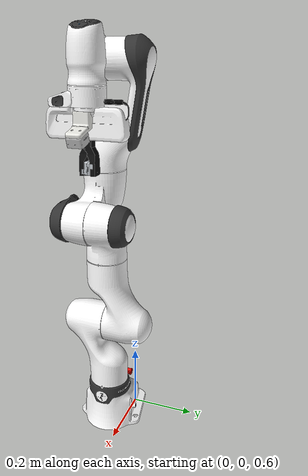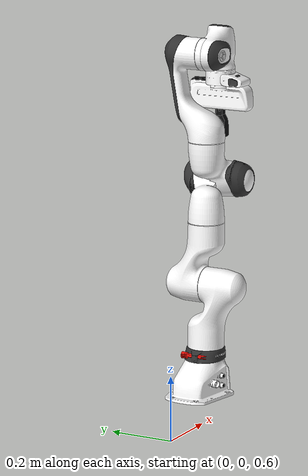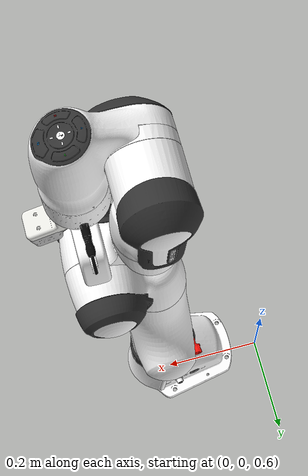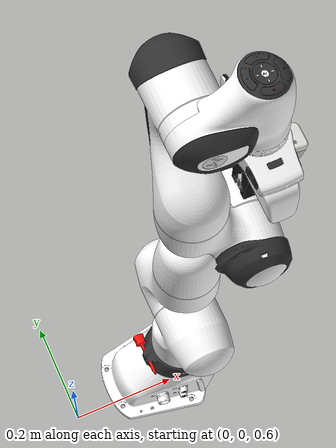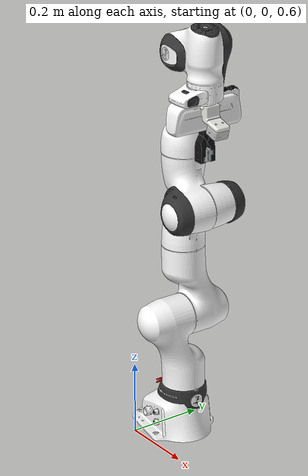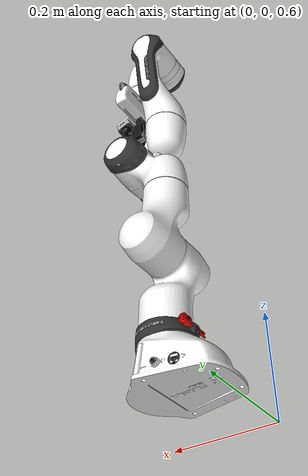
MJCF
<mujoco model="fr3">

  <compiler angle="radian" meshdir="assets"/>

  <option integrator="implicitfast"/>

  <default>
    <default class="fr3">

      <!-- Full gravity compensation for the FR3 body tree only. -->

      <joint
        damping="0.21"
        armature="0.195"
        frictionloss="1.137"/>

      <position inheritrange="1"/>

      <default class="visual">
        <geom
          type="mesh"
          group="2"
          contype="0"
          conaffinity="0"/>
      </default>

      <default class="collision">
        <geom
          type="mesh"
          group="3"
          mass="0"
          density="0"/>
      </default>

      <site
        size="0.001"
        rgba="0.5 0.5 0.5 0.3"
        group="4"/>

    </default>
  </default>

  <asset>

    <material name="black" rgba=".2 .2 .2 1"/>
    <material name="white" rgba="1 1 1 1"/>
    <material name="red" rgba="1 0.072272 0.039546 1"/>
    <material name="gray" rgba="0.863156 0.863156 0.863157 1"/>

    <material
      name="button_green"
      rgba="0.102241 0.571125 0.102242 1"/>

    <material
      name="button_red"
      rgba="0.520996 0.008023 0.013702 1"/>

    <material
      name="button_blue"
      rgba="0.024157 0.445201 0.737911 1"/>

    <mesh file="link0_0.obj"/>
    <mesh file="link0_1.obj"/>
    <mesh file="link0_2.obj"/>
    <mesh file="link0_3.obj"/>
    <mesh file="link0_4.obj"/>
    <mesh file="link0_5.obj"/>
    <mesh file="link0_6.obj"/>

    <mesh file="link1.obj"/>
    <mesh file="link2.obj"/>

    <mesh file="link3_0.obj"/>
    <mesh file="link3_1.obj"/>

    <mesh file="link4_0.obj"/>
    <mesh file="link4_1.obj"/>

    <mesh file="link5_0.obj"/>
    <mesh file="link5_1.obj"/>
    <mesh file="link5_2.obj"/>

    <mesh file="link6_0.obj"/>
    <mesh file="link6_1.obj"/>
    <mesh file="link6_2.obj"/>
    <mesh file="link6_3.obj"/>
    <mesh file="link6_4.obj"/>
    <mesh file="link6_5.obj"/>
    <mesh file="link6_6.obj"/>
    <mesh file="link6_7.obj"/>

    <mesh file="link7_0.obj"/>
    <mesh file="link7_1.obj"/>
    <mesh file="link7_2.obj"/>
    <mesh file="link7_3.obj"/>

    <mesh name="link0_coll" file="link0.stl"/>
    <mesh name="link1_coll" file="link1.stl"/>
    <mesh name="link2_coll" file="link2.stl"/>
    <mesh name="link3_coll" file="link3.stl"/>
    <mesh name="link4_coll" file="link4.stl"/>
    <mesh name="link5_coll" file="link5.stl"/>
    <mesh name="link6_coll" file="link6.stl"/>
    <mesh name="link7_coll" file="link7.stl"/>

    <mesh name="franka_hand_coll" file="hand.stl"/>

    <!-- Official high-detail Franka Hand visual mesh -->
        <!-- Official Franka hand split into body and cable -->
        <!-- Detailed Franka hand components -->
    <mesh
      name="franka_hand_body_mesh"
      file="franka_hand_body_aligned.stl"/>

    <mesh
      name="franka_hand_cable_mesh"
      file="franka_hand_cable_aligned.stl"/>

    <mesh
      name="franka_hand_connector_mesh"
      file="franka_hand_connector_aligned.stl"/>

        <!-- Official GelSight Mini CAD -->
    <mesh
      name="gelsight_mini_shell_mesh"
      file="gsmini_shell.stl"
      scale="0.001 0.001 0.001"/>

    <mesh
      name="gelsight_panda_adapter_mesh"
      file="panda_adapter_gsmini.stl"
      scale="0.001 0.001 0.001"/>

    <mesh
      name="d405_franka_mount_mesh"
      file="d405_mount/d405_mount_aligned.stl"
      scale="0.001 0.001 0.001"/>

    <!-- Intel RealSense D405 CAD -->
    <mesh
      name="d405_camera_mesh"
      file="d405_mount/RealSense_D405_binary.stl"/>

  </asset>

  <worldbody>

    <body gravcomp="1" name="base" childclass="fr3" pos="0.22 0 0.70">

      <body gravcomp="1" name="fr3_link0">

        <geom mesh="link0_0" material="black" class="visual"/>
        <geom mesh="link0_1" material="white" class="visual"/>
        <geom mesh="link0_2" material="white" class="visual"/>
        <geom mesh="link0_3" material="white" class="visual"/>
        <geom mesh="link0_4" material="white" class="visual"/>
        <geom mesh="link0_5" material="red" class="visual"/>
        <geom mesh="link0_6" material="black" class="visual"/>

        <geom
          name="fr3_link0_collision"
          mesh="link0_coll"
          class="collision"/>

        <body gravcomp="1" name="fr3_link1" pos="0 0 0.333">

          <inertial
            pos="4.128e-07 -0.0181251 -0.0386036"
            quat="0.998098 -0.0605364 0.00380499 0.0110109"
            mass="2.92747"
            diaginertia="0.0239286 0.0227246 0.00610634"/>

          <joint
            name="fr3_joint1"
            axis="0 0 1"
            range="-2.7437 2.7437"
            actuatorfrcrange="-87 87"/>

          <geom
            name="fr3_link1_collision"
            class="collision"
            mesh="link1_coll"/>

          <geom
            material="white"
            mesh="link1"
            class="visual"/>

          <body gravcomp="1" name="fr3_link2" quat="1 -1 0 0">

            <inertial
              pos="0.00318289 -0.0743222 0.00881461"
              quat="0.502599 0.584437 -0.465998 0.434366"
              mass="2.93554"
              diaginertia="0.0629567 0.0411924 0.0246371"/>

            <joint
              name="fr3_joint2"
              axis="0 0 1"
              range="-1.7837 1.7837"
              actuatorfrcrange="-87 87"/>

            <geom
              material="white"
              mesh="link2"
              class="visual"/>

            <geom
              name="fr3_link2_collision"
              class="collision"
              mesh="link2_coll"/>

            <body gravcomp="1"
              name="fr3_link3"
              pos="0 -0.316 0"
              quat="1 1 0 0">

              <inertial
                pos="0.0407016 -0.00482006 -0.0289731"
                quat="0.921025 -0.244161 0.155272 0.260745"
                mass="2.2449"
                diaginertia="0.0267409 0.0189869 0.0171587"/>

              <joint
                name="fr3_joint3"
                axis="0 0 1"
                range="-2.9007 2.9007"
                actuatorfrcrange="-87 87"/>

              <geom
                mesh="link3_0"
                material="white"
                class="visual"/>

              <geom
                mesh="link3_1"
                material="black"
                class="visual"/>

              <geom
                name="fr3_link3_collision"
                class="collision"
                mesh="link3_coll"/>

              <body gravcomp="1"
                name="fr3_link4"
                pos="0.0825 0 0"
                quat="1 1 0 0">

                <inertial
                  pos="-0.0459101 0.0630493 -0.00851879"
                  quat="0.438018 0.803311 0.00937812 0.403414"
                  mass="2.6156"
                  diaginertia="0.05139 0.0372717 0.0160047"/>

                <joint
                  name="fr3_joint4"
                  axis="0 0 1"
                  range="-3.0421 -0.1518"
                  actuatorfrcrange="-87 87"/>

                <geom
                  mesh="link4_0"
                  material="white"
                  class="visual"/>

                <geom
                  mesh="link4_1"
                  material="black"
                  class="visual"/>

                <geom
                  name="fr3_link4_collision"
                  class="collision"
                  mesh="link4_coll"/>

                <body gravcomp="1"
                  name="fr3_link5"
                  pos="-0.0825 0.384 0"
                  quat="1 -1 0 0">

                  <inertial
                    pos="-0.00160396 0.0292536 -0.0972966"
                    quat="0.919031 0.125604 0.0751531 -0.366003"
                    mass="2.32712"
                    diaginertia="0.0579335 0.0449144 0.0130634"/>

                  <joint
                    name="fr3_joint5"
                    axis="0 0 1"
                    range="-2.8065 2.8065"
                    actuatorfrcrange="-12 12"
                    armature="0.074"
                    frictionloss="0.763"/>

                  <geom
                    mesh="link5_0"
                    material="white"
                    class="visual"/>

                  <geom
                    mesh="link5_1"
                    material="white"
                    class="visual"/>

                  <geom
                    mesh="link5_2"
                    material="black"
                    class="visual"/>

                  <geom
                    name="fr3_link5_collision"
                    class="collision"
                    mesh="link5_coll"/>

                  <body gravcomp="1" name="fr3_link6" quat="1 1 0 0">

                    <inertial
                      pos="0.0597131 -0.0410295 -0.0101693"
                      quat="0.621301 0.552665 0.510011 0.220081"
                      mass="1.81704"
                      diaginertia="0.0175039 0.0161123 0.00193529"/>

                    <joint
                      name="fr3_joint6"
                      axis="0 0 1"
                      range="0.5445 4.5169"
                      actuatorfrcrange="-12 12"
                      armature="0.074"
                      frictionloss="0.44"/>

                    <geom
                      mesh="link6_0"
                      material="button_green"
                      class="visual"/>

                    <geom
                      mesh="link6_1"
                      material="white"
                      class="visual"/>

                    <geom
                      mesh="link6_2"
                      material="white"
                      class="visual"/>

                    <geom
                      mesh="link6_3"
                      material="gray"
                      class="visual"/>

                    <geom
                      mesh="link6_4"
                      material="button_red"
                      class="visual"/>

                    <geom
                      mesh="link6_5"
                      material="white"
                      class="visual"/>

                    <geom
                      mesh="link6_6"
                      material="black"
                      class="visual"/>

                    <geom
                      mesh="link6_7"
                      material="button_blue"
                      class="visual"/>

                    <geom
                      name="fr3_link6_collision"
                      class="collision"
                      mesh="link6_coll"/>

                    <body gravcomp="1"
                      name="fr3_link7"
                      pos="0.088 0 0"
                      quat="1 1 0 0">

                      <inertial
                        pos="0.00452258 0.00862619 -0.0161633"
                        quat="0.727579 0.0978688 -0.24906 0.63168"
                        mass="0.627143"
                        diaginertia="0.000223836 0.000223642 5.64132e-07"/>

                      <joint
                        name="fr3_joint7"
                        axis="0 0 1"
                        range="-3.0159 3.0159"
                        actuatorfrcrange="-12 12"
                        armature="0.074"
                        frictionloss="0.248"/>

                      <!-- Link 7 visual-only clocking correction: 30 deg -->
                      <geom
                        mesh="link7_0"
                        material="black"
                        class="visual"
                        pos="0 0 0.0015"
                        euler="0 0 0.783"/>

                      <geom
                        mesh="link7_1"
                        material="white"
                        class="visual"
                        pos="0 0 0.0015"
                        euler="0 0 0.783"/>

                      <geom
                        mesh="link7_2"
                        material="white"
                        class="visual"
                        pos="0 0 0.0015"
                        euler="0 0 0.783"/>

                      <geom
                        mesh="link7_3"
                        material="black"
                        class="visual"
                        pos="0 0 0.0015"
                        euler="0 0 0.783"/>

                      <geom
                        name="fr3_link7_collision"
                        class="collision"
                        mesh="link7_coll"/>

                      <site
                        name="attachment_site"
                        pos="0 0 0.107"
                        type="sphere"
                        size="0.010"
                        rgba="0 1 0 1"/>

                      <body gravcomp="1" name="fr3_hand" pos="0 0 0.107" euler="0 0 -0.7853981633974483">

                        <body
                          gravcomp="1"
                          name="fr3_hand_physical"
                          euler="0 0 0.7853981633974483">

                        <!-- Official detailed Franka hand visual -->

                        <!-- Official detailed Franka hand visual -->
                        <!-- Official detailed Franka hand visual -->
                        <!-- Detailed Franka hand body -->
                        <!-- Detailed Franka hand body -->
                        <geom
                          name="fr3_hand_visual"
                          type="mesh"
                          mesh="franka_hand_body_mesh"
                          rgba="1 1 1 1"
                          contype="0"
                          conaffinity="0"
                          group="2"/>

                        <geom
                          name="fr3_hand_cable_visual"
                          type="mesh"
                          mesh="franka_hand_cable_mesh"
                          rgba="0.02 0.02 0.02 1"
                          contype="0"
                          conaffinity="0"
                          group="2"/>

                        <geom
                          name="fr3_hand_connector_visual"
                          type="mesh"
                          mesh="franka_hand_connector_mesh"
                          rgba="0.02 0.02 0.02 1"
                          contype="0"
                          conaffinity="0"
                          group="2"/>

                        <!-- Existing simplified collision geometry -->
                        <geom
                          name="fr3_hand_collision"
                          type="mesh"
                          mesh="franka_hand_coll"
                          rgba="0.25 0.25 0.25 0"
                          group="3"/>

                        <site
                          name="hand_tcp"
                          pos="0 0 0.1034"
                          type="sphere"
                          size="0.010"
                          rgba="0 0 1 1"/>

                        <!--
                          Center of the grasp between the fingertip pads.
                          This is the site used by the harvesting IK.
                        -->

                        <site
                          name="grasp_center"
                          pos="0 0 0.1834"
                          type="sphere"
                          size="0.008"
                          rgba="0 1 1 1"/>

                        <site
                          name="tomato_attachment_center"
                          pos="0 0 0.23304"
                          type="sphere"
                          size="0.006"
                          rgba="1 0 1 0"/>

                        <body gravcomp="1"
                          name="fr3_leftfinger"
                          pos="0 0 0.0584">

                          <joint
                            name="fr3_finger_joint1"
                            type="slide"
                            axis="0 1 0"
                            range="0 0.06"
                            damping="0.3"
                            limited="true"/>

                          <!-- Panda adapter replaces the original Franka finger -->
                          <!-- LEFT Panda adapter assembly -->
                          <body
                            name="gelsight_left_adapter_mount"
                            pos="0 0 0.01525"
                            quat="0.7071068 -0.7071068 0 0">

                            <geom
                              name="gelsight_left_adapter_visual"
                              type="mesh"
                              mesh="gelsight_panda_adapter_mesh"
                              rgba="0.05 0.05 0.05 1"
                              contype="0"
                              conaffinity="0"
                              group="2"/>

                            <body
                              name="gelsight_left_sensor_mount"
                              pos="0 -0.060 0.012"
                              quat="0.5 -0.5 -0.5 0.5">

                              <geom
                                name="gelsight_left_shell_visual"
                                type="mesh"
                                mesh="gelsight_mini_shell_mesh"
                                rgba="0.72 0.74 0.76 1"
                                contype="0"
                                conaffinity="0"
                                group="2"/>

                              <geom
                                name="gelsight_left_shell_collision"
                                type="box"
                                pos="0 0 0.000"
                                size="0.018 0.013 0.018"
                                rgba="0 0 0 0"
                                friction="2.0 0.03 0.003"
                                solref="0.002 1"
                                solimp="0.995 0.999 0.0002"
                                condim="4"
                                contype="1"
                                conaffinity="1"/>

                              <!-- GelSight sensing area -->
                              <geom
                                name="gelsight_left_pad"
                                type="box"
                                pos="0 0 0.0146"
                                size="0.0093 0.00715 0.0010"
                                rgba="0.10 0.25 0.65 0.8"
                                friction="2.0 0.02 0.002"
                                contype="0"
                                conaffinity="0"
                                group="3"/>

                              <!-- Robust invisible GelSight collision surface -->
                              <geom
                                name="gelsight_left_collision"
                                type="box"
                                pos="-0.00011 0.00025 0.00003"
                                size="0.0190 0.0180 0.0160"
                                rgba="0 0 0 0"
                                friction="3.0 0.05 0.005"
                                solref="0.003 1"
                                solimp="0.98 0.995 0.0005"
                                margin="0.001"
                                condim="4"
                                contype="1"
                                conaffinity="1"
                                group="3"/>

                              <site
                                name="gelsight_left_pad_site"
                                pos="0 0 0.0157"
                                type="box"
                                size="0.0093 0.00715 0.0005"
                                rgba="0 1 1 0.6"/>

                              <!-- Simulated GelSight Mini internal camera -->
                              <camera
                                name="gelsight_left_camera"
                                pos="0 0 0"
                                quat="1 0 0 0"
                                fovy="70"
                                resolution="320 240"/>

                            </body>
                          </body>

                        </body>

                        <body gravcomp="1"
                          name="fr3_rightfinger"
                          pos="0 0 0.0584">

                          <joint
                            name="fr3_finger_joint2"
                            type="slide"
                            axis="0 -1 0"
                            range="0 0.06"
                            damping="0.3"
                            limited="true"/>

                          <!-- Panda adapter replaces the original Franka finger -->
                          <!-- RIGHT Panda adapter assembly -->
                          <body
                            name="gelsight_right_adapter_mount"
                            pos="0 0 0.01525"
                            quat="0 0 0.7071068 -0.7071068">

                            <geom
                              name="gelsight_right_adapter_visual"
                              type="mesh"
                              mesh="gelsight_panda_adapter_mesh"
                              rgba="0.05 0.05 0.05 1"
                              contype="0"
                              conaffinity="0"
                              group="2"/>

                            <body
                              name="gelsight_right_sensor_mount"
                              pos="0 -0.060 0.012"
                              quat="0.5 -0.5 -0.5 0.5">

                              <geom
                                name="gelsight_right_shell_visual"
                                type="mesh"
                                mesh="gelsight_mini_shell_mesh"
                                rgba="0.72 0.74 0.76 1"
                                contype="0"
                                conaffinity="0"
                                group="2"/>

                              <geom
                                name="gelsight_right_shell_collision"
                                type="box"
                                pos="-0.00011 0.00025 0.00003"
                                size="0.0177 0.0165 0.0173"
                                rgba="0 0 0 0"
                                friction="2.0 0.03 0.003"
                                solref="0.002 1"
                                solimp="0.995 0.999 0.0002"
                                condim="4"
                                contype="1"
                                conaffinity="1"/>

                              <!-- GelSight sensing area -->
                              <geom
                                name="gelsight_right_pad"
                                type="box"
                                pos="0 0 0.0146"
                                size="0.0093 0.00715 0.0010"
                                rgba="0.10 0.25 0.65 0.8"
                                friction="2.0 0.02 0.002"
                                contype="0"
                                conaffinity="0"
                                group="3"/>

                              <!-- Robust invisible GelSight collision surface -->
                              <geom
                                name="gelsight_right_collision"
                                type="box"
                                pos="-0.00011 0.00025 0.00003"
                                size="0.0190 0.0180 0.0160"
                                rgba="0 0 0 0"
                                friction="3.0 0.05 0.005"
                                solref="0.003 1"
                                solimp="0.98 0.995 0.0005"
                                margin="0.001"
                                condim="4"
                                contype="1"
                                conaffinity="1"
                                group="3"/>

                              <site
                                name="gelsight_right_pad_site"
                                pos="0 0 0.0157"
                                type="box"
                                size="0.0093 0.00715 0.0005"
                                rgba="0 1 1 0.6"/>

                              <!-- Simulated GelSight Mini internal camera -->
                              <camera
                                name="gelsight_right_camera"
                                pos="0 0 0"
                                quat="1 0 0 0"
                                fovy="70"
                                resolution="320 240"/>

                            </body>
                          </body>

                        </body>

                        <!-- Physical curved D405-to-Franka adapter                     -->

                        <!-- Curved D405-to-Franka CAD adapter                         -->

                        <!-- Final physical D405-to-Franka CAD mount                    -->

                        <body
                          name="d405_franka_mount"
                          pos="-0.0075 0.00561 -0.00205"
                          euler="1.5707963268 0 0">

                          <geom
                            name="d405_franka_mount_geom"
                            type="mesh"
                            mesh="d405_franka_mount_mesh"
                            rgba="0.92 0.92 0.90 1"
                            contype="0"
                            conaffinity="0"
                            group="2"/>

                          <!-- Physical Intel RealSense D405 -->
                          <!-- Physical Intel RealSense D405 -->
                          <!-- 16-degree physical camera tilt -->
                          <body
                            name="d405_camera_tilt"
                            pos="0.05752 0.0722 0.004"
                            euler="0 0 0.2792526803">

                            <body
                              name="d405_camera_visual"
                              pos="0 0 0"
                              euler="1.5707963268 3.1415926536 -4.7123889804">

                              <geom
                                name="d405_camera_visual_geom"
                                type="mesh"
                                mesh="d405_camera_mesh"
                                rgba="0.75 0.75 0.75 1"
                                contype="0"
                                conaffinity="0"
                                group="2"/>

                              <!-- D405 front-face visual details                    -->
                              <!-- Visual only: no collision                         -->

                              <!-- Black front panel -->
                              <!-- Rounded D405 black front panel                    -->
                              <!-- Front face of camera STL is approximately Z = 0  -->

                              <!-- Central vertical rectangle -->
                              <!-- Rounded D405 black front panel                    -->
                              <!-- Camera STL front face is approximately Z = 0     -->

                              <!-- Central vertical rectangle -->
                              <geom
                                name="d405_front_panel_center"
                                type="box"
                                pos="0 0 0.0003"
                                size="0.0195 0.0145 0.00035"
                                rgba="0.025 0.025 0.030 1"
                                contype="0"
                                conaffinity="0"
                                group="2"/>

                              <!-- Central horizontal rectangle -->
                              <geom
                                name="d405_front_panel_horizontal"
                                type="box"
                                pos="0 0 0.0003"
                                size="0.0145 0.0195 0.00035"
                                rgba="0.025 0.025 0.030 1"
                                contype="0"
                                conaffinity="0"
                                group="2"/>

                              <!-- Top-left rounded corner -->
                              <geom
                                name="d405_front_panel_corner_tl"
                                type="cylinder"
                                pos="-0.0145 0.0145 0.0003"
                                size="0.0050 0.00035"
                                rgba="0.025 0.025 0.030 1"
                                contype="0"
                                conaffinity="0"
                                group="2"/>

                              <!-- Top-right rounded corner -->
                              <geom
                                name="d405_front_panel_corner_tr"
                                type="cylinder"
                                pos="0.0145 0.0145 0.0003"
                                size="0.0050 0.00035"
                                rgba="0.025 0.025 0.030 1"
                                contype="0"
                                conaffinity="0"
                                group="2"/>

                              <!-- Bottom-left rounded corner -->
                              <geom
                                name="d405_front_panel_corner_bl"
                                type="cylinder"
                                pos="-0.0145 -0.0145 0.0003"
                                size="0.0050 0.00035"
                                rgba="0.025 0.025 0.030 1"
                                contype="0"
                                conaffinity="0"
                                group="2"/>

                              <!-- Bottom-right rounded corner -->
                              <geom
                                name="d405_front_panel_corner_br"
                                type="cylinder"
                                pos="0.0145 -0.0145 0.0003"
                                size="0.0050 0.00035"
                                rgba="0.025 0.025 0.030 1"
                                contype="0"
                                conaffinity="0"
                                group="2"/>

                              <!-- D405 two-lens visual                              -->

                              <!-- Left lens outer surround -->
                              <geom
                                name="d405_visual_left_lens_ring"
                                type="cylinder"
                                pos="-0.010 0 0.0009"
                                size="0.0042 0.0005"
                                rgba="0.09 0.09 0.10 1"
                                contype="0"
                                conaffinity="0"
                                group="2"/>

                              <!-- Left lens glass -->
                              <geom
                                name="d405_visual_left_lens"
                                type="cylinder"
                                pos="-0.010 0 0.0015"
                                size="0.0028 0.00035"
                                rgba="0.008 0.012 0.020 1"
                                contype="0"
                                conaffinity="0"
                                group="2"/>

                              <!-- Left inner optical element -->
                              <geom
                                name="d405_visual_left_lens_inner"
                                type="cylinder"
                                pos="-0.010 0 0.0019"
                                size="0.0015 0.00015"
                                rgba="0.04 0.08 0.14 1"
                                contype="0"
                                conaffinity="0"
                                group="2"/>

                              <!-- Right lens outer surround -->
                              <geom
                                name="d405_visual_right_lens_ring"
                                type="cylinder"
                                pos="0.010 0 0.0009"
                                size="0.0042 0.0005"
                                rgba="0.09 0.09 0.10 1"
                                contype="0"
                                conaffinity="0"
                                group="2"/>

                              <!-- Right lens glass -->
                              <geom
                                name="d405_visual_right_lens"
                                type="cylinder"
                                pos="0.010 0 0.0015"
                                size="0.0028 0.00035"
                                rgba="0.008 0.012 0.020 1"
                                contype="0"
                                conaffinity="0"
                                group="2"/>

                              <!-- Right inner optical element -->
                              <geom
                                name="d405_visual_right_lens_inner"
                                type="cylinder"
                                pos="0.010 0 0.0019"
                                size="0.0015 0.00015"
                                rgba="0.04 0.08 0.14 1"
                                contype="0"
                                conaffinity="0"
                                group="2"/>

                              <!-- Actual simulated optical camera at left lens -->
                              <!-- Actual simulated optical camera at opposite lens -->
                              <site
                                name="d405_camera_link_site"
                                pos="0.010 0 0.0021"
                                type="sphere"
                                size="0.002"
                                rgba="1 0 1 0"/>

                              <camera
                                name="d405_color"
                                pos="0.010 0 0.0021"
                                quat="0 0 1 0"
                                fovy="69"
                                resolution="640 480"/>

                              <camera
                                name="d405_depth"
                                pos="-0.010 0 0.0021"
                                quat="0 0 1 0"
                                fovy="69"
                                resolution="640 480"/>

                            </body>

                          </body>

                          <body
                            gravcomp="1"
                            name="d405_mount"
                            pos="0 0 0.053"
                            euler="0 0 0">

                            <!-- Main silver D405 housing -->
                            <geom
                              name="d405_body"
                              type="box"
                              pos="0 0 0"
                              size="0.012 0.0215 0.0215"
                              rgba="0.72 0.74 0.76 0"
                              contype="0"
                              conaffinity="0"
                              group="2"/>

                            <!-- Black front face -->
                            <geom
                              name="d405_front_panel"
                              type="box"
                              pos="0.0128 0 0"
                              size="0.0010 0.0195 0.0195"
                              rgba="0.025 0.025 0.028 0"
                              contype="0"
                              conaffinity="0"
                              group="2"/>

                            <!-- Left lens surround -->
                            <geom
                              name="d405_left_lens_surround"
                              type="cylinder"
                              pos="0.0140 0.0090 0"
                              size="0.0043 0.0010"
                              euler="0 90 0"
                              rgba="0.055 0.055 0.060 0"
                              contype="0"
                              conaffinity="0"
                              group="2"/>

                            <!-- Left optical glass -->
                            <geom
                              name="d405_left_lens"
                              type="cylinder"
                              pos="0.0152 0.0090 0"
                              size="0.0028 0.0006"
                              euler="0 90 0"
                              rgba="0.01 0.015 0.025 0"
                              contype="0"
                              conaffinity="0"
                              group="2"/>

                            <!-- Left lens inner highlight -->
                            <geom
                              name="d405_left_lens_inner"
                              type="cylinder"
                              pos="0.0159 0.0090 0"
                              size="0.0015 0.00025"
                              euler="0 90 0"
                              rgba="0.06 0.09 0.14 0"
                              contype="0"
                              conaffinity="0"
                              group="2"/>

                            <!-- Right lens surround -->
                            <geom
                              name="d405_right_lens_surround"
                              type="cylinder"
                              pos="0.0140 -0.0090 0"
                              size="0.0043 0.0010"
                              euler="0 90 0"
                              rgba="0.055 0.055 0.060 0"
                              contype="0"
                              conaffinity="0"
                              group="2"/>

                            <!-- Right optical glass -->
                            <geom
                              name="d405_right_lens"
                              type="cylinder"
                              pos="0.0152 -0.0090 0"
                              size="0.0028 0.0006"
                              euler="0 90 0"
                              rgba="0.01 0.015 0.025 0"
                              contype="0"
                              conaffinity="0"
                              group="2"/>

                            <!-- Right lens inner highlight -->
                            <geom
                              name="d405_right_lens_inner"
                              type="cylinder"
                              pos="0.0159 -0.0090 0"
                              size="0.0015 0.00025"
                              euler="0 90 0"
                              rgba="0.06 0.09 0.14 0"
                              contype="0"
                              conaffinity="0"
                              group="2"/>

                            </body>

                          </body>

                      </body>

                    </body>

                    <!-- closes fr3_hand_physical -->
                    </body>

                  </body>
                </body>
              </body>
            </body>
          </body>
        </body>
      </body>
    </body>

  </worldbody>

  <!-- Franka Hand mechanical finger synchronization            -->

  <equality>

    <joint
      name="fr3_finger_coupling"
      joint1="fr3_finger_joint1"
      joint2="fr3_finger_joint2"
      polycoef="0 1 0 0 0"
      solref="0.003 1"
      solimp="0.95 0.99 0.001"/>

  </equality>

  <actuator>

    <!-- Torque-controlled FR3 arm actuators -->
    <motor
      name="fr3_joint1"
      joint="fr3_joint1"
      gear="1"
      ctrllimited="true"
      ctrlrange="-87 87"/>

    <motor
      name="fr3_joint2"
      joint="fr3_joint2"
      gear="1"
      ctrllimited="true"
      ctrlrange="-87 87"/>

    <motor
      name="fr3_joint3"
      joint="fr3_joint3"
      gear="1"
      ctrllimited="true"
      ctrlrange="-87 87"/>

    <motor
      name="fr3_joint4"
      joint="fr3_joint4"
      gear="1"
      ctrllimited="true"
      ctrlrange="-87 87"/>

    <motor
      name="fr3_joint5"
      joint="fr3_joint5"
      gear="1"
      ctrllimited="true"
      ctrlrange="-12 12"/>

    <motor
      name="fr3_joint6"
      joint="fr3_joint6"
      gear="1"
      ctrllimited="true"
      ctrlrange="-12 12"/>

    <motor
      name="fr3_joint7"
      joint="fr3_joint7"
      gear="1"
      ctrllimited="true"
      ctrlrange="-12 12"/>

    <!-- Keep the gripper position-controlled -->
    <position
      name="fr3_finger_joint1"
      joint="fr3_finger_joint1"
      kp="10000"
      kv="100"
      ctrlrange="0 0.06"
      forcerange="-35 35"/>

    <position
      name="fr3_finger_joint2"
      joint="fr3_finger_joint2"
      kp="10000"
      kv="100"
      ctrlrange="0 0.06"
      forcerange="-35 35"/>

  </actuator>

  <sensor>

    <touch
      name="gelsight_left_touch"
      site="gelsight_left_pad_site"/>

    <touch
      name="gelsight_right_touch"
      site="gelsight_right_pad_site"/>

  </sensor>

  <contact>
    <exclude body1="fr3_link0" body2="fr3_link1"/>
  </contact>

  <keyframe>

    <key
      name="home"
      qpos="0 0 0 -1.57079 0 1.57079 -0.7853 0.06 0.06"
      ctrl="0 0 0 0 0 0 0 0.04 0.04"/>

  </keyframe>

</mujoco>
